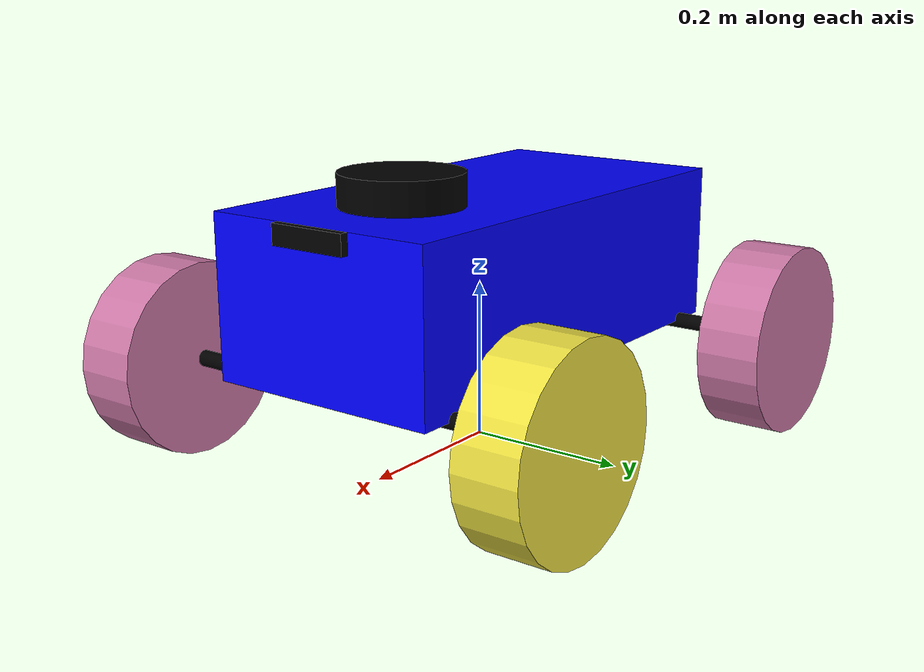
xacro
<?xml version="1.0"?>
<robot name="AGV" xmlns:xacro="http://www.ros.org/wiki/xacro">
    <xacro:include filename="AGV_common_properties.xacro"/>
    <xacro:include filename="AGV_camera.xacro"/>
    <xacro:include filename="AGV_lidar.xacro"/>

  <!-- ================= PARAMETERS ================= -->

  <!-- ================= CHASSIS ================= -->

  <link name="base_link">

    <visual>
      <geometry>
        <box size="${base_length} ${base_width} ${base_height}"/>
      </geometry>
      <material name="AGV_blue"/>
      <origin xyz="0 0 0.1" rpy="0 0 0"/>
    </visual>

    <collision>
      <geometry>
        <box size="${base_length} ${base_width} ${base_height}"/>
      </geometry>
      <origin xyz="0 0 0.1" rpy="0 0 0"/>
    </collision>

    <xacro:box_inertia m="15.0" x="${base_length}" y="${base_width}" z="${base_height}" o_xyz="0 0 0" o_rpy="0 0 0" />

  </link>

  <link name="base_footprint_link"/>

  <joint name="base_footprint_joint" type="fixed">
        <parent link="base_footprint_link"/>
        <child link="base_link"/>
        <origin xyz="0 0 0.12" rpy="0 0 0"/>
        <axis xyz="0 0 0" />
  </joint>

<!-- ================= REAR LEFT RACK SUPPORT================= -->

  <link name="rear_left_rack_support_link">
    <visual>
      <geometry>
        <cylinder radius="0.01" length="${base_width/2}"/>
      </geometry>
      <material name="AGV_black"/>
    </visual>

    <xacro:wheel_inertia m="1.0" r="0.01" h="${base_width/2}" o_xyz="0 0 0" o_rpy="0 0 0" />

  </link>

  <joint name="base_rear_left_rack_support_joint" type="fixed">
    <parent link="base_link"/>
    <child link="rear_left_rack_support_link"/>

    <origin xyz="${-base_length/2 + 0.05} ${(base_width/2)+0.05} 0" rpy="${pi/2} 0 0"/>

  </joint>

  <!-- ================= REAR LEFT WHEEL ================= -->

  <link name="rear_left_wheel">

    <visual>
      <origin rpy="1.5707963 0 0"/>
      <geometry>
        <cylinder radius="${wheel_radius}" length="${wheel_length}"/>
      </geometry>
    </visual>

    <collision>
      <origin rpy="1.5707963 0 0"/>
      <geometry>
        <cylinder radius="${wheel_radius}" length="${wheel_length}"/>
      </geometry>
    </collision>

    <xacro:wheel_inertia m="1.0" r="${wheel_radius}" h="${wheel_length}" o_xyz="0 0 0" o_rpy="1.5707963 0 0" />

  </link>

  <joint name="rear_left_rack_wheel_joint" type="continuous">

    <parent link="rear_left_rack_support_link"/>
    <child link="rear_left_wheel"/>

    <origin xyz="0 0 ${-wheel_length}" rpy="-1.57 0 0"/>

    <axis xyz="0 1 0"/>

    <dynamics damping="0.1"/>

  </joint>

  <!-- ================= REAR RIGHT RACK SUPPORT================= -->

  <link name="rear_right_rack_support_link">
    <visual>
      <geometry>
        <cylinder radius="0.01" length="${base_width/2}"/>
      </geometry>
      <material name="AGV_black"/>
    </visual>

    <xacro:wheel_inertia m="1.0" r="0.01" h="${base_width/2}" o_xyz="0 0 0" o_rpy="0 0 0" />

  </link>

  <joint name="base_rear_right_rack_support_joint" type="fixed">
    <parent link="base_link"/>
    <child link="rear_right_rack_support_link"/>

    <origin xyz="${-base_length/2 + 0.05} ${-(base_width/2)-0.05} 0" rpy="${pi/2} 0 0"/>

  </joint>
  <!-- ================= REAR RIGHT WHEEL ================= -->

  <link name="rear_right_wheel">

    <visual>
      <origin rpy="1.5707963 0 0"/>
      <geometry>
        <cylinder radius="${wheel_radius}" length="${wheel_length}"/>
      </geometry>
    </visual>

    <collision>
      <origin rpy="1.5707963 0 0"/>
      <geometry>
        <cylinder radius="${wheel_radius}" length="${wheel_length}"/>
      </geometry>
    </collision>

    <xacro:wheel_inertia m="1.0" r="${wheel_radius}" h="${wheel_length}" o_xyz="0 0 0" o_rpy="1.5707963 0 0" />

  </link>

  <joint name="rear_right_rack_wheel_joint" type="continuous">

    <parent link="rear_right_rack_support_link"/>
    <child link="rear_right_wheel"/>

    <origin xyz="0 0 ${wheel_length}" rpy="-1.57 0 0"/>

    <axis xyz="0 1 0"/>

    <dynamics damping="0.1"/>

  </joint>

  <!-- ================= FRONT LEFT RACK SUPPORT================= -->

  <link name="front_left_rack_support_link">
    <visual>
      <geometry>
        <cylinder radius="0.01" length="${base_width/2}"/>
      </geometry>
      <material name="AGV_black"/>
    </visual>

    <xacro:wheel_inertia m="1.0" r="0.01" h="${base_width/2}" o_xyz="0 0 0" o_rpy="0 0 0" />

  </link>

  <joint name="base_front_left_rack_support_joint" type="fixed">
    <parent link="base_link"/>
    <child link="front_left_rack_support_link"/>

    <origin xyz="${base_length/2 - 0.05} ${(base_width/2)+0.05} 0" rpy="${pi/2} 0 0"/>

  </joint>

  <!-- ================= FRONT LEFT STEERING SUPPORT================= -->

  <link name="front_left_steering_support_link">

    <visual>
      <geometry>
        <cylinder radius="0.015" length="${base_width/6}"/>
      </geometry>
      <material name="AGV_grey"/>
    </visual>

    <xacro:wheel_inertia m="1.0" r="0.02" h="${base_width/4}" o_xyz="0 0 0" o_rpy="0 0 0" />

  </link>

  <joint name="front_left_rack_steering_support_joint" type="revolute">
    <parent link="front_left_rack_support_link"/>
    <child link="front_left_steering_support_link"/>

    <origin xyz="0 0 ${-base_width/4}" rpy="${-pi/2} 0 0"/>
    <axis xyz="0 0 1"/>

    <limit
      lower="-0.6"
      upper="0.6"
      effort="100"
      velocity="1.5"/>

    <dynamics damping="0.2"/>

  </joint>

  <!-- ================= FRONT LEFT WHEEL ================= -->

  <link name="front_left_wheel">

    <visual>
      <origin rpy="1.5707963 0 0"/>
      <geometry>
        <cylinder radius="${wheel_radius}" length="${wheel_length}"/>
      </geometry>
    </visual>

    <collision>
      <origin rpy="1.5707963 0 0"/>
      <geometry>
        <cylinder radius="${wheel_radius}" length="${wheel_length}"/>
      </geometry>
    </collision>

    <xacro:wheel_inertia m="0.2" r="${wheel_radius}" h="${wheel_length}" o_xyz="0 0 0" o_rpy="0 0 0" />

  </link>

  <joint name="front_left_steering_support_wheel_joint" type="continuous">

    <parent link="front_left_steering_support_link"/>
    <child link="front_left_wheel"/>

    <origin xyz="0 0 0" rpy="0 ${pi/2} 0"/>

    <axis xyz="0 -1 0"/>

    <dynamics damping="0.1"/>

  </joint>

<!-- ================= FRONT RIGHT RACK SUPPORT================= -->

  <link name="front_right_rack_support_link">
    <visual>
      <geometry>
        <cylinder radius="0.01" length="${base_width/2}"/>
      </geometry>
      <material name="AGV_black"/>
    </visual>

    <xacro:wheel_inertia m="1.0" r="0.01" h="${base_width/2}" o_xyz="0 0 0" o_rpy="0 0 0" />

  </link>

  <joint name="base_front_right_rack_support_joint" type="fixed">
    <parent link="base_link"/>
    <child link="front_right_rack_support_link"/>

    <origin xyz="${base_length/2 - 0.05} ${-(base_width/2)-0.05} 0" rpy="${pi/2} 0 0"/>

  </joint>

  <!-- ================= FRONT RIGHT STEERING SUPPORT================= -->

  <link name="front_right_steering_support_link">

    <visual>
      <geometry>
        <cylinder radius="0.015" length="${base_width/6}"/>
      </geometry>
      <material name="AGV_grey"/>
    </visual>

    <xacro:wheel_inertia m="1.0" r="0.02" h="${base_width/4}" o_xyz="0 0 0" o_rpy="0 0 0" />

  </link>

  <joint name="front_right_rack_steering_support_joint" type="revolute">
    <parent link="front_right_rack_support_link"/>
    <child link="front_right_steering_support_link"/>

    <origin xyz="0 0 ${base_width/4}" rpy="${-pi/2} 0 0"/>
    <axis xyz="0 0 1"/>

    <limit
      lower="-0.6"
      upper="0.6"
      effort="100"
      velocity="1.5"/>

    <dynamics damping="0.2"/>

  </joint>

  <!-- ================= FRONT RIGHT WHEEL ================= -->

  <link name="front_right_wheel">

    <visual>
      <origin rpy="1.5707963 0 0"/>
      <geometry>
        <cylinder radius="${wheel_radius}" length="${wheel_length}"/>
      </geometry>
    </visual>

    <collision>
      <origin rpy="1.5707963 0 0"/>
      <geometry>
        <cylinder radius="${wheel_radius}" length="${wheel_length}"/>
      </geometry>
    </collision>

    <xacro:wheel_inertia m="0.2" r="${wheel_radius}" h="${wheel_length}" o_xyz="0 0 0" o_rpy="0 0 0" />

  </link>

  <joint name="front_right_steering_support_wheel_joint" type="continuous">

    <parent link="front_right_steering_support_link"/>
    <child link="front_right_wheel"/>

    <origin xyz="0 0 0" rpy="0 ${pi/2} 0"/>

    <axis xyz="0 -1 0"/>

    <dynamics damping="0.1"/>

  </joint>

  <!-- ================= ROS 2 CONTROL ================= -->

  <ros2_control name="AckermannRobotSystem" type="system">

    <hardware>
      <plugin>gz_ros2_control/GazeboSimSystem</plugin>
    </hardware>

    Rear traction joints

    <joint name="rear_left_rack_wheel_joint">
      <command_interface name="velocity"/>
      <state_interface name="position"/>
      <state_interface name="velocity"/>
    </joint>

    <joint name="rear_right_rack_wheel_joint">
      <command_interface name="velocity"/>
      <state_interface name="position"/>
      <state_interface name="velocity"/>
    </joint>

    Front steering joints

    <joint name="front_left_rack_steering_support_joint">
      <command_interface name="position"/>
      <state_interface name="position"/>
      <state_interface name="velocity"/>
    </joint>

    <joint name="front_right_rack_steering_support_joint">
      <command_interface name="position"/>
      <state_interface name="position"/>
      <state_interface name="velocity"/>
    </joint>

    Passive front wheel rotation

    <joint name="front_left_steering_support_wheel_joint">
      <state_interface name="position"/>
      <state_interface name="velocity"/>
    </joint>

    <joint name="front_right_steering_support_wheel_joint">
      <state_interface name="position"/>
      <state_interface name="velocity"/>
    </joint>

  </ros2_control>

  <!-- ================= GAZEBO CONTROL PLUGIN ================= -->

  <gazebo>

    <plugin
      filename="libgz_ros2_control-system.so"
      name="gz_ros2_control::GazeboSimROS2ControlPlugin">

      <parameters>
        $(find my_ros2_bringup)/config/ackermann_controller.yaml
      </parameters>

    </plugin>

  </gazebo>

</robot>

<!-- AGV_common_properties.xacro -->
<robot xmlns:xacro="http://www.ros.org/wiki/xacro">

    <xacro:property name="base_length" value="0.6" />
    <xacro:property name="base_width" value="0.30" />
    <xacro:property name="base_height" value="0.2" />
    <xacro:property name="wheel_radius" value="0.12" />
    <xacro:property name="wheel_length" value="0.08" />

    <material name="AGV_blue">
        <color rgba="0 0 1 1"/>
    </material>
    <material name="AGV_grey">
        <color rgba="0.5 0.5 0.5 1"/>
    </material>
    <material name="AGV_black">
        <color rgba="0 0 0 1"/>
    </material>
    <material name="AGV_orange">
        <color rgba="1 0.5 0 1"/>
    </material>
    <material name="AGV_yellow">
        <color rgba="1 1 0 1"/>
    </material>

    <xacro:macro name="box_inertia" params="m x y z o_xyz o_rpy">
        <inertial>
            <mass value="${m}"/>
            <origin xyz="${o_xyz}" rpy="${o_rpy}"/>
            <inertia ixx="${(m/12)*(y*y + z*z)}" ixy="0" ixz="0"
                     iyy="${(m/12)*(x*x + z*z)}" iyz="0"
                     izz="${(m/12)*(y*y + x*x)}"/>
        </inertial>
    </xacro:macro>

    <xacro:macro name="wheel_inertia" params="m r h o_xyz o_rpy">
        <inertial>
            <mass value="${m}" />
            <origin xyz="${o_xyz}" rpy="${o_rpy}" />
            <inertia ixx="${(m/12)*(3*r*r + h*h)}" ixy="0" ixz="0"
                     iyy="${(m/12)*(3*r*r + h*h)}" iyz="0"
                     izz="${0.5*m*r*r}"/>
        </inertial>
    </xacro:macro>

</robot>

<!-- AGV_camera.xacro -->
<robot xmlns:xacro="http://www.ros.org/wiki/xacro">

    <xacro:property name="camera_length" value="0.01"/>
    <xacro:property name="camera_width" value="0.1"/>
    <xacro:property name="camera_height" value="0.025"/>

    <link name="camera_link">
        <visual>
            <geometry>
                <box size="${camera_length} ${camera_width} ${camera_height}"/>
            </geometry>
            <material name="AGV_black"/>
        </visual>
        <collision>
            <geometry>
                <box size="${camera_length} ${camera_width} ${camera_height}"/>
            </geometry>
        </collision>
        <xacro:box_inertia m="0.1" x="${camera_length}" y="${camera_width}" z="${camera_height}" o_xyz="0 0 0" o_rpy="0 0 0" />
    </link>

    <joint name="base_camera_joint" type="fixed">
        <parent link="base_link"/>
        <child link="camera_link"/>
        <origin xyz="${(base_length+camera_length)/2} 0 ${base_height-(camera_height/2)}" rpy="0 0 0"/>
    </joint>

    <link name="camera_link_optical" />

    <joint name="camera_optical_joint" type="fixed">
        <origin xyz="0 0 0" rpy="0 ${-pi/2} 0"/>
        <parent link="camera_link"/>
        <child link="camera_link_optical"/>
    </joint>

    <gazebo reference="camera_link">
        <sensor name="agv_camera" type="camera">
            <camera>
                <horizontal_fov>1.3962634</horizontal_fov>
                <image>
                    <width>640</width>
                    <height>480</height>
                    <format>R8G8B8</format>
                </image>
                <clip>
                    <near>0.1</near>
                    <far>15</far>
                </clip>
                <noise>
                    <type>gaussian</type>
                    <mean>0.0</mean>
                    <stddev>0.007</stddev>
                </noise>
                <optical_frame_id>camera_link_optical</optical_frame_id>
                <camera_info_topic>camera/camera_info</camera_info_topic>
            </camera>
            <always_on>1</always_on>
            <update_rate>20</update_rate>
            <visualize>true</visualize>
            <topic>camera/image_raw</topic>
        </sensor>
    </gazebo>

</robot>

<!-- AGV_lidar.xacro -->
<robot xmlns:xacro="http://www.ros.org/wiki/xacro">

  <!-- ================= lidar ================= -->
  <xacro:property name="lidar_body_radius" value="0.075" />
  <xacro:property name="lidar_body_length" value="0.04" />

  <link name="lidar_link">

    <visual>
    <origin rpy="0 0 0"/>
      <geometry>
        <cylinder radius="${lidar_body_radius}" length="${lidar_body_length}"/>
    </geometry>
    <material name="AGV_black"/>
    </visual>

    <collision>
      <origin rpy="0 0 0"/>
      <geometry>
        <cylinder radius="${lidar_body_radius}" length="${lidar_body_length}"/>
      </geometry>
    </collision>

    <xacro:wheel_inertia m="1.0" r="${lidar_body_radius}" h="${lidar_body_length}" o_xyz="0 0 0" o_rpy="0 0 0" />

  </link>

  <joint name="base_lidar_joint" type="fixed">
    <parent link="base_link"/>
    <child link="lidar_link"/>
    <origin xyz="${(base_length/2)-(2*lidar_body_radius)} 0 ${base_height+(lidar_body_length/2)}" rpy="0 0 0"/>
  </joint>

  <!-- ================= GAZEBO LIDAR SENSOR ================= -->

<gazebo reference="lidar_link">

    <sensor name="agv_lidar" type="gpu_lidar">

        <always_on>true</always_on>
        <update_rate>10</update_rate>
        <visualize>true</visualize>

        <topic>/scan</topic>
        <gz_frame_id>lidar_link</gz_frame_id>

        <lidar>
            <scan>
                <horizontal>
                    <samples>360</samples>
                    <resolution>1</resolution>
                    <min_angle>-3.14159</min_angle>
                    <max_angle>3.14159</max_angle>
                </horizontal>
            </scan>
            <range>
                <min>0.12</min>
                <max>20.0</max>
                <resolution>0.01</resolution>
            </range>
        </lidar>

    </sensor>

</gazebo>

</robot>
